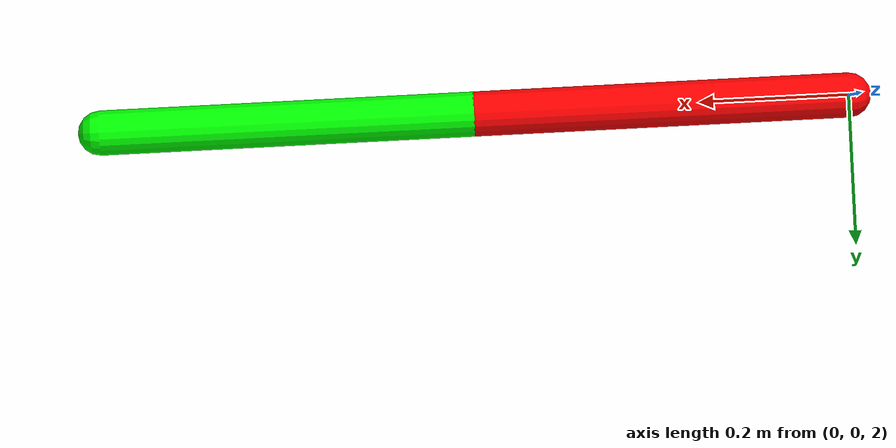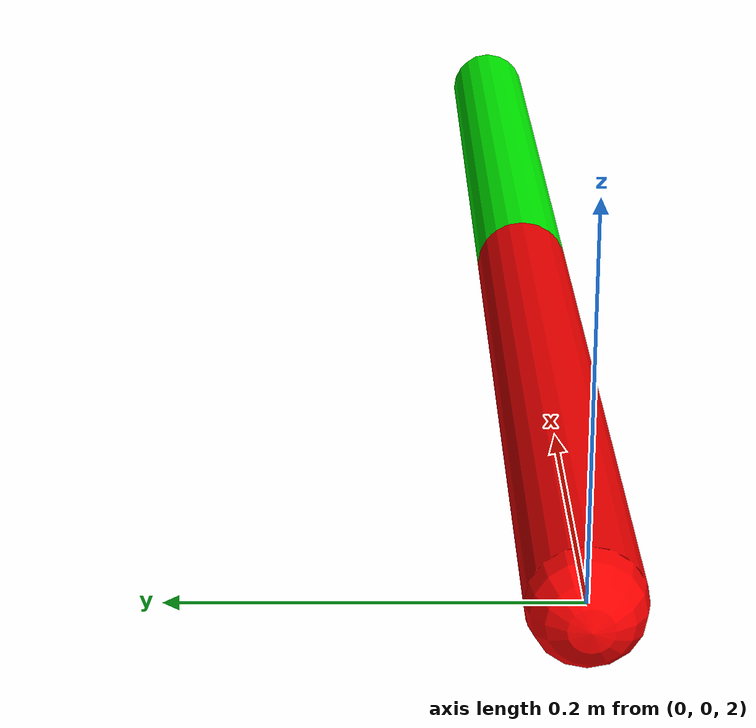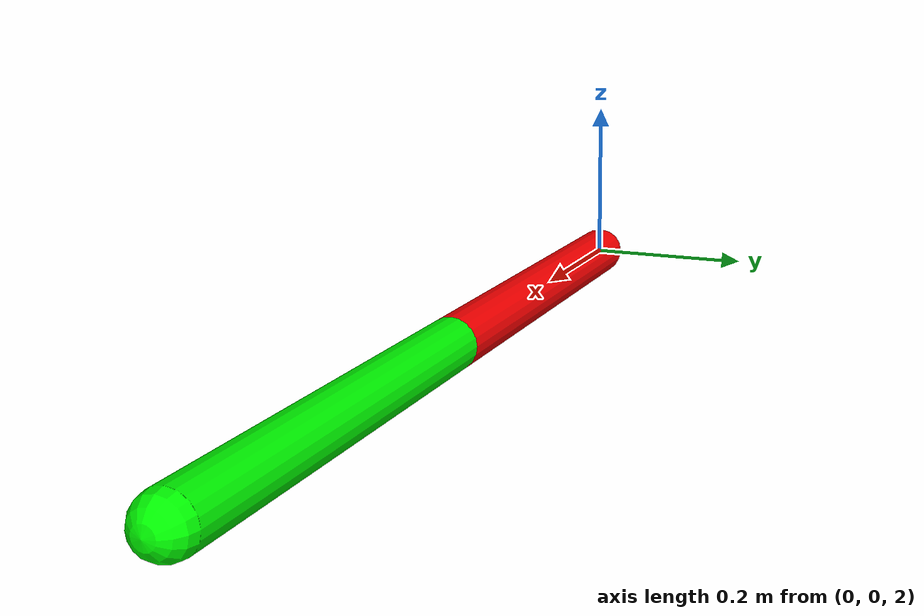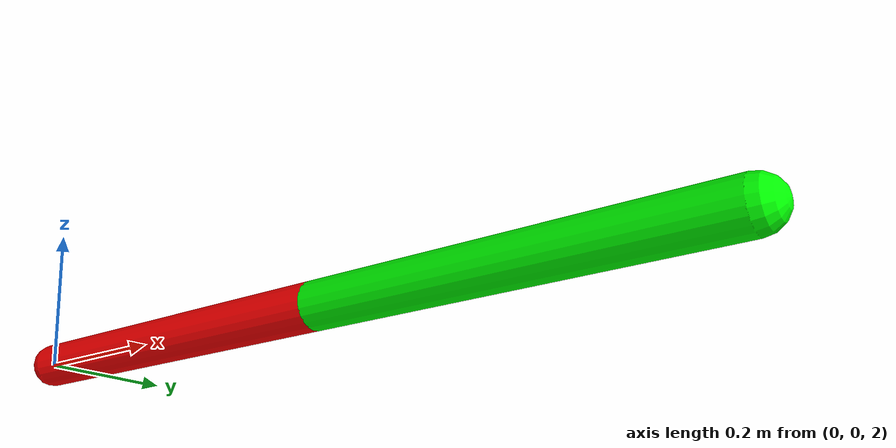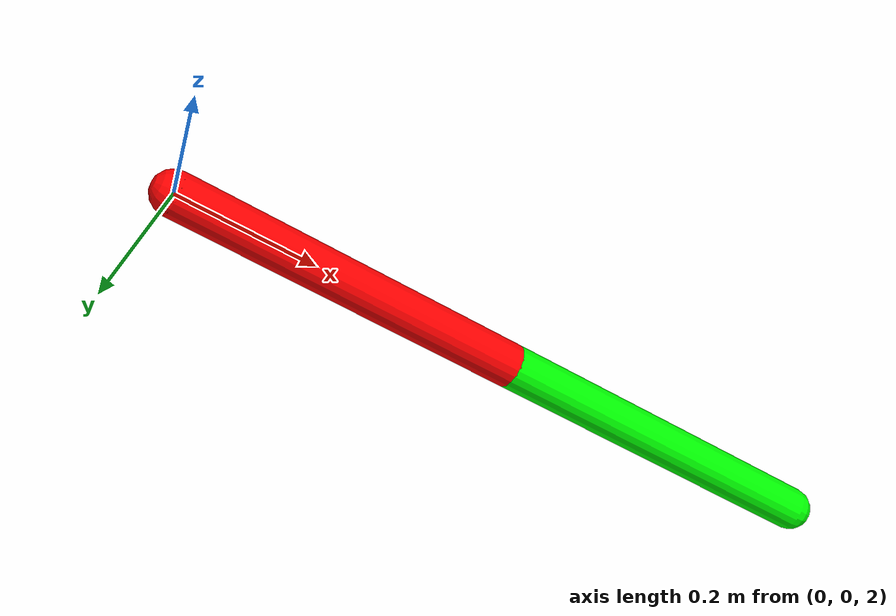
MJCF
<mujoco model="myscene">
    <option gravity="0 0 -9.81" timestep="0.002" />

    <worldbody>
        <geom name="floor" type="plane" size="2 2 1" rgba="1 1 1 1" />

        <camera
            name="cam"
            pos="1.8 -1.8 1.2"
            xyaxes="0.707 0.707 0 -0.3 0.3 0.9"
        />

        <body name="link1" pos="0 0 2">
            <joint name="j1" type="hinge" axis="0 1 0" damping="0.2" />
            <geom
                type="capsule"
                rgba="1 0 0 1"
                fromto="0 0 0 0.5 0 0"
                size="0.03"
                mass="1"
            />

            <body name="link2" pos="0.5 0 0">
                <joint name="j2" type="hinge" axis="0 1 0" damping="0.2" />
                <geom
                    type="capsule"
                    fromto="0 0 0 0.5 0 0"
                    rgba="0 1 0 1"
                    size="0.03"
                    mass="1"
                />
            </body>
        </body>

    </worldbody>

    <actuator>
        <motor name="j1_motor" joint="j1" />
    </actuator>
</mujoco>
